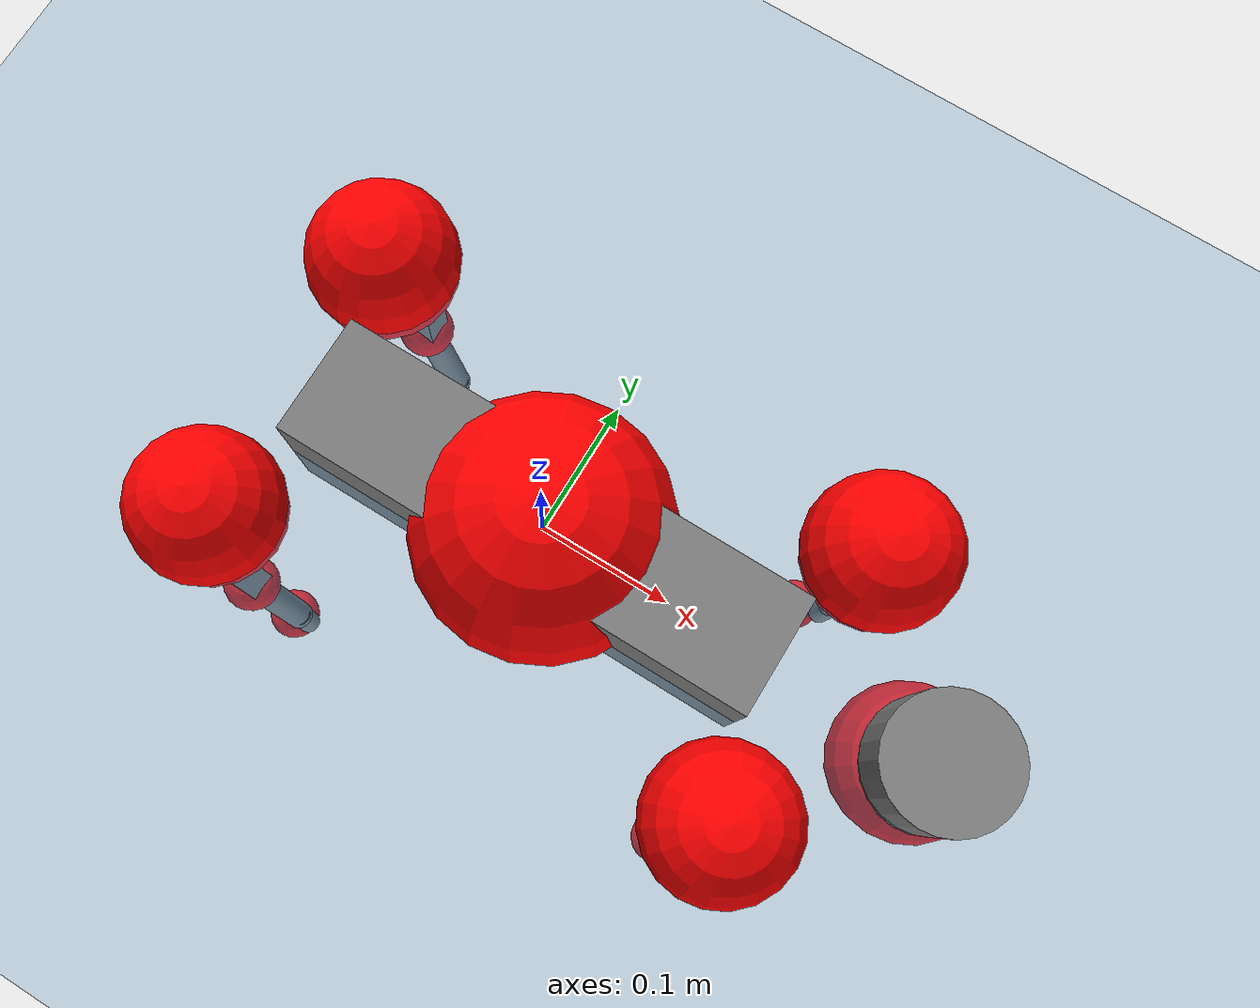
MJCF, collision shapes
<mujoco model="go2">
  <compiler angle="radian" assetdir="assets" balanceinertia="true" inertiafromgeom="false"/>

  <option timestep="0.005" density="1.2" viscosity="2e-05"/>

  <size nkey="1"/>

  <visual>
    <quality shadowsize="8192"/>
    <map shadowclip="0.5"/>
  </visual>

  <default>
    <default class="/">
      <geom contype="0" conaffinity="0" group="1" solref="-1000 -80"/>
      <site size="0.01 0.005 0.005" group="5"/>
      <general forcelimited="true" biastype="affine" gainprm="20" biasprm="0 -20 -0.5"/>
      <default class="go2">
        <joint armature="0.01" damping="0.01" frictionloss="0.2"/>
        <geom condim="1" margin="0.001"/>
        <default class="visual">
          <geom type="mesh" group="2"/>
        </default>
        <default class="collision">
          <geom group="3"/>
          <default class="foot">
            <geom size="0.022 0 0" condim="6" priority="1" friction="0.8 0.02 0.01" solimp="0.015 1 0.022"/>
          </default>
        </default>
        <default class="reward_collision_sphere">
          <geom group="5" rgba="1 0 0 1"/>
        </default>
      </default>
    </default>
  </default>

  <asset>
    <texture type="skybox" colorspace="auto" name="//unnamed_texture_0" builtin="gradient" rgb1="0.95 0.95 0.95" rgb2="0.95 0.95 0.95" width="100" height="600"/>
    <texture type="2d" colorspace="auto" name="texplane" builtin="checker" rgb1="0.345 0.575 0.748" rgb2="0.345 0.575 0.748" markrgb="1 1 1" width="512" height="512"/>
    <material name="MatPlane" class="/" texture="texplane" texuniform="true" texrepeat="2 2" specular="0.9"/>
    <material name="metal" class="/" rgba="0.9 0.95 0.95 1"/>
    <material name="black" class="/" rgba="0 0 0 1"/>
    <material name="white" class="/"/>
    <material name="gray" class="/" rgba="0.671705 0.692426 0.77427 1"/>
    <mesh name="base_0" class="/" file="base_0.obj"/>
    <mesh name="base_1" class="/" file="base_1.obj"/>
    <mesh name="base_2" class="/" file="base_2.obj"/>
    <mesh name="base_3" class="/" file="base_3.obj"/>
    <mesh name="base_4" class="/" file="base_4.obj"/>
    <mesh name="hip_0" class="/" file="hip_0.obj"/>
    <mesh name="hip_1" class="/" file="hip_1.obj"/>
    <mesh name="thigh_0" class="/" file="thigh_0.obj"/>
    <mesh name="thigh_1" class="/" file="thigh_1.obj"/>
    <mesh name="thigh_mirror_0" class="/" file="thigh_mirror_0.obj"/>
    <mesh name="thigh_mirror_1" class="/" file="thigh_mirror_1.obj"/>
    <mesh name="calf_0" class="/" file="calf_0.obj"/>
    <mesh name="calf_1" class="/" file="calf_1.obj"/>
    <mesh name="calf_mirror_0" class="/" file="calf_mirror_0.obj"/>
    <mesh name="calf_mirror_1" class="/" file="calf_mirror_1.obj"/>
    <mesh name="foot" class="/" file="foot.obj"/>
  </asset>

  <worldbody>
    <geom name="floor" class="/" size="100 100 0.125" type="plane" group="0" material="MatPlane"/>
    <light name="toplight_shadow" class="/" pos="0 0 5" dir="0.0990148 0.0990148 -0.990148" type="directional" ambient="0.04 0.04 0.04" diffuse="0.55 0.55 0.55" specular="0.12 0.12 0.12"/>
    <light name="toplight_fill" class="/" pos="0 0 5" dir="0.0990148 0.0990148 -0.990148" type="directional" castshadow="false" ambient="0.04 0.04 0.04" diffuse="0.3 0.3 0.3" specular="0.08 0.08 0.08"/>
    <body name="trunk" childclass="go2" pos="0.00115682 -0.000930032 -0.000145002" quat="1 -1.81732e-05 1.39845e-05 -3.11319e-05">
      <inertial pos="0.0226241 -0.000409679 -0.00460035" quat="0.00327633 0.714968 -0.00152561 0.699147" mass="5.98897" diaginertia="0.154181 0.0705172 0.0118397"/>
      <joint name="//unnamed_joint_0" type="free" armature="0" damping="0" frictionloss="0"/>
      <geom name="//unnamed_geom_1" class="visual" material="black" mesh="base_0"/>
      <geom name="//unnamed_geom_2" class="visual" material="black" mesh="base_1"/>
      <geom name="//unnamed_geom_3" class="visual" material="black" mesh="base_2"/>
      <geom name="//unnamed_geom_4" class="visual" material="white" mesh="base_3"/>
      <geom name="//unnamed_geom_5" class="visual" material="gray" mesh="base_4"/>
      <geom name="trunk_1" class="collision" size="0.180012 0.0447398 0.0545491" type="box"/>
      <geom name="trunk_2" class="collision" size="0.0478501 0.0430651" pos="0.305216 0 0.00864263" type="cylinder"/>
      <geom name="trunk_3" class="collision" size="0.0449791" pos="0.313783 0 -0.0518558"/>
      <geom name="//unnamed_geom_9" class="reward_collision_sphere" size="0.0957002"/>
      <geom name="//unnamed_geom_10" class="reward_collision_sphere" size="0.0574201" pos="0.299861 0 -0.0388918"/>
      <site name="imu" pos="-0.0290227 -0.00268722 0.0279291" size="0.00957002"/>
      <camera name="track" pos="0 -1.87162 0" quat="0.707107 0.707107 0 0" mode="trackcom"/>
      <camera name="ego_camera" pos="0.334131 0 0.0388918" quat="-0.5 -0.5 0.5 0.5"/>
      <body name="FL_hip" pos="0.207124 0.0446544 0.00111324" quat="1 -2.64831e-05 0.000134224 -0.000354279">
        <inertial pos="-0.00706748 0.00289004 9.33222e-05" quat="0.497308 0.498494 0.506181 0.497965" mass="0.595487" diaginertia="0.0012469 0.000429484 0.000230773"/>
        <joint name="FL_hip_joint" pos="0 0 0" axis="0.999905 0.00385444 0.0132154" range="-1.05251 1.04961" armature="0.00873472" damping="0.00731081" frictionloss="0.182178"/>
        <geom name="//unnamed_geom_11" class="visual" material="metal" mesh="hip_0"/>
        <geom name="//unnamed_geom_12" class="visual" material="gray" mesh="hip_1"/>
        <geom name="//unnamed_geom_13" class="collision" size="0.0440221 0.01914" pos="0 0.0748647 0" quat="0.707107 0.707107 0 0" type="cylinder"/>
        <geom name="//unnamed_geom_14" class="reward_collision_sphere" size="0.0574201" pos="0 0.0655066 0"/>
        <body name="FL_thigh" pos="-0.000176433 0.0901301 0.001265" quat="1 0.000413659 0.000328484 -1.95565e-05">
          <inertial pos="-0.00453043 -0.0208578 -0.029956" quat="0.831956 0.0825834 -0.0216915 0.548233" mass="1.01714" diaginertia="0.00842508 0.00422999 0.000429504"/>
          <joint name="FL_thigh_joint" pos="0 0 0" axis="-0.004508 0.999988 -0.00168313" range="-1.58988 3.49261" armature="0.00991562" damping="0.00749063" frictionloss="0.198553"/>
          <geom name="//unnamed_geom_15" class="visual" material="metal" mesh="thigh_0"/>
          <geom name="//unnamed_geom_16" class="visual" material="gray" mesh="thigh_1"/>
          <geom name="//unnamed_geom_17" class="collision" size="0.101921 0.0117233 0.016269" pos="0 0 -0.092044" quat="0.707107 0 0.707107 0" type="box"/>
          <body name="FL_calf" pos="-0.000401466 -0.00232717 -0.184305" quat="1 -5.98489e-06 3.49451e-05 -4.20031e-05">
            <inertial pos="0.00597162 -0.000757248 -0.12182" quat="0.707778 0.00113918 -0.0108496 0.70635" mass="0.208184" diaginertia="0.00207679 0.00104479 2.51728e-05"/>
            <joint name="FL_calf_joint" pos="0 0 0" axis="-0.0060264 0.999947 0.00830741" stiffness="0.00274179" range="-2.72256 -0.846485" armature="0.00967591" damping="0.00444433" frictionloss="0.195267"/>
            <geom name="//unnamed_geom_18" class="visual" material="gray" mesh="calf_0"/>
            <geom name="//unnamed_geom_19" class="visual" material="black" mesh="calf_1"/>
            <geom name="FL_calf0" class="collision" size="0.011484 0.0574201" pos="0.00856747 0 -0.0518558" quat="0.994493 0 -0.104807 0" type="cylinder"/>
            <geom name="//unnamed_geom_21" class="collision" size="0.010527 0.0311026" pos="0.0214187 0 -0.127911" quat="0.999688 0 0.0249974 0" type="cylinder"/>
            <geom name="//unnamed_geom_22" class="visual" pos="0 0 -0.184088" quat="1 0 0 0" material="black" mesh="foot"/>
            <geom name="FL_foot" class="foot" size="0.0178752" pos="-0.00214187 0 -0.184088"/>
            <geom name="//unnamed_geom_24" class="reward_collision_sphere" size="0.023925"/>
            <geom name="//unnamed_geom_25" class="reward_collision_sphere" size="0.023925" pos="-0.00214187 0 -0.184088"/>
            <site name="FL_foot" class="foot" pos="-0.00214187 0 -0.184088" size="0.00957002"/>
          </body>
        </body>
      </body>
      <body name="FR_hip" pos="0.206097 -0.0411019 -0.000978487" quat="1 -0.000113112 3.21107e-05 0.000124628">
        <inertial pos="-0.00370223 -0.0021758 -0.0022219" quat="0.498548 0.507013 0.496779 0.497592" mass="0.610417" diaginertia="0.00127125 0.000438556 0.00023642"/>
        <joint name="FR_hip_joint" pos="0 0 0" axis="0.999995 -0.000807204 -0.00306683" stiffness="0.0060551" range="-1.07916 1.05814" armature="0.00968375" damping="0.0133914" frictionloss="0.184515"/>
        <geom name="//unnamed_geom_26" class="visual" pos="0 6.23273e-10 2.67335e-08" quat="4.63268e-05 1 0 0" material="metal" mesh="hip_0"/>
        <geom name="//unnamed_geom_27" class="visual" pos="0 1.0104e-09 -6.61221e-08" quat="4.63268e-05 1 0 0" material="gray" mesh="hip_1"/>
        <geom name="//unnamed_geom_28" class="collision" size="0.0440221 0.01914" pos="0 -0.0748647 0" quat="0.707107 0.707107 0 0" type="cylinder"/>
        <geom name="//unnamed_geom_29" class="reward_collision_sphere" size="0.0574201" pos="0 -0.0655066 0"/>
        <body name="FR_thigh" pos="0.000101252 -0.0898194 -0.000213446" quat="1 -6.81121e-05 -4.22259e-05 4.97702e-05">
          <inertial pos="-0.00269418 0.0231328 -0.0285874" quat="0.551399 -0.0205907 0.0842958 0.829717" mass="1.00125" diaginertia="0.00831517 0.00418062 0.000420455"/>
          <joint name="FR_thigh_joint" pos="0 0 0" axis="0.00193569 -0.999996 -0.00207257" range="-3.50247 1.54978" armature="0.00976459" damping="0.011656" frictionloss="0.194306"/>
          <geom name="//unnamed_geom_30" class="visual" material="metal" mesh="thigh_mirror_0"/>
          <geom name="//unnamed_geom_31" class="visual" material="gray" mesh="thigh_mirror_1"/>
          <geom name="//unnamed_geom_32" class="collision" size="0.101921 0.0117233 0.016269" pos="0 0 -0.092044" quat="0.707107 0 0.707107 0" type="box"/>
          <body name="FR_calf" pos="-0.000254409 -0.000926675 -0.183191" quat="1 0.000302529 -0.00073823 0.000441996">
            <inertial pos="0.00891625 0.00116281 -0.121861" quat="0.703208 -0.00535498 -0.000139927 0.710964" mass="0.208204" diaginertia="0.00206126 0.00105545 2.60498e-05"/>
            <joint name="FR_calf_joint" pos="0 0 0" axis="-0.00070118 -0.999999 -0.000939182" range="0.802724 2.72171" armature="0.00983996" damping="0.0156426" frictionloss="0.201496"/>
            <geom name="//unnamed_geom_33" class="visual" material="gray" mesh="calf_mirror_0"/>
            <geom name="//unnamed_geom_34" class="visual" material="black" mesh="calf_mirror_1"/>
            <geom name="FR_calf0" class="collision" size="0.012441 0.0574201" pos="0.0107093 0 -0.0518558" quat="0.995004 0 -0.0998334 0" type="cylinder"/>
            <geom name="//unnamed_geom_36" class="collision" size="0.010527 0.0311026" pos="0.0214187 0 -0.127911" quat="0.999688 0 0.0249974 0" type="cylinder"/>
            <geom name="//unnamed_geom_37" class="visual" pos="0 0 -0.184088" quat="1 0 0 0" material="black" mesh="foot"/>
            <geom name="FR_foot" class="foot" size="0.0218435" pos="-0.00214187 0 -0.184088"/>
            <geom name="//unnamed_geom_39" class="reward_collision_sphere" size="0.023925"/>
            <geom name="//unnamed_geom_40" class="reward_collision_sphere" size="0.023925" pos="-0.00214187 0 -0.184088"/>
            <site name="FR_foot" class="foot" pos="-0.00214187 0 -0.184088" size="0.00957002"/>
          </body>
        </body>
      </body>
      <body name="RL_hip" pos="-0.205124 0.0432495 0.000810034" quat="1 2.97387e-05 -5.25956e-06 6.16737e-05">
        <inertial pos="0.00732598 0.00015524 9.46047e-05" quat="0.506965 0.495577 0.49494 0.502419" mass="0.599863" diaginertia="0.00124611 0.000425731 0.00022828"/>
        <joint name="RL_hip_joint" pos="0 0 0" axis="-0.999835 -0.0163619 0.00787542" range="-1.05207 1.02882" armature="0.00955145" damping="0.00827616" frictionloss="0.198749"/>
        <geom name="//unnamed_geom_41" class="visual" pos="-1.80042e-09 0 -3.52925e-07" quat="4.63268e-05 0 1 0" material="metal" mesh="hip_0"/>
        <geom name="//unnamed_geom_42" class="visual" pos="-2.9187e-09 0 -3.12994e-07" quat="4.63268e-05 0 1 0" material="gray" mesh="hip_1"/>
        <geom name="//unnamed_geom_43" class="collision" size="0.0440221 0.01914" pos="0 0.0748647 0" quat="0.707107 0.707107 0 0" type="cylinder"/>
        <geom name="//unnamed_geom_44" class="reward_collision_sphere" size="0.0574201" pos="0 0.0655066 0"/>
        <body name="RL_thigh" pos="-0.000755091 0.0880858 0.000809955" quat="1 0.000299661 -0.000108116 -0.000301934">
          <inertial pos="-0.00376817 -0.018938 -0.0283806" quat="0.82908 0.0842281 -0.0189988 0.552423" mass="1.01136" diaginertia="0.00840823 0.00419119 0.000413105"/>
          <joint name="RL_thigh_joint" pos="0 0 0" axis="0.0049531 0.999987 -0.00145465" range="-0.528308 4.52341" armature="0.010279" damping="0.00538643" frictionloss="0.19902"/>
          <geom name="//unnamed_geom_45" class="visual" material="metal" mesh="thigh_0"/>
          <geom name="//unnamed_geom_46" class="visual" material="gray" mesh="thigh_1"/>
          <geom name="//unnamed_geom_47" class="collision" size="0.101921 0.0117233 0.016269" pos="0 0 -0.092044" quat="0.707107 0 0.707107 0" type="box"/>
          <body name="RL_calf" pos="0.000311198 0.000261336 -0.185934" quat="1 0.000145281 0.00041408 0.0007944">
            <inertial pos="0.00710498 -0.000455518 -0.119964" quat="0.713275 0.00321382 -0.00580385 0.700853" mass="0.208535" diaginertia="0.00211279 0.00106614 2.55811e-05"/>
            <joint name="RL_calf_joint" pos="0 0 0" axis="3.68964e-05 1 -0.000381842" stiffness="0.00363898" range="-2.72014 -0.829408" armature="0.00959336" damping="0.00398212" frictionloss="0.188124"/>
            <geom name="//unnamed_geom_48" class="visual" material="gray" mesh="calf_0"/>
            <geom name="//unnamed_geom_49" class="visual" material="black" mesh="calf_1"/>
            <geom name="RL_calf0" class="collision" size="0.012441 0.0574201" pos="0.0107093 0 -0.0518558" quat="0.995004 0 -0.0998334 0" type="cylinder"/>
            <geom name="//unnamed_geom_51" class="collision" size="0.010527 0.0311026" pos="0.0214187 0 -0.127911" quat="0.999688 0 0.0249974 0" type="cylinder"/>
            <geom name="//unnamed_geom_52" class="visual" pos="0 0 -0.184088" quat="1 0 0 0" material="black" mesh="foot"/>
            <geom name="RL_foot" class="foot" size="0.0180018" pos="-0.00214187 0 -0.184088"/>
            <geom name="//unnamed_geom_54" class="reward_collision_sphere" size="0.023925"/>
            <geom name="//unnamed_geom_55" class="reward_collision_sphere" size="0.023925" pos="-0.00214187 0 -0.184088"/>
            <site name="RL_foot" class="foot" pos="-0.00214187 0 -0.184088" size="0.00957002"/>
          </body>
        </body>
      </body>
      <body name="RR_hip" pos="-0.208866 -0.0445429 -0.000824985" quat="1 -0.000246759 7.46141e-05 0.000291512">
        <inertial pos="0.00552285 -0.00261854 -4.9165e-05" quat="0.501031 0.501963 0.498014 0.498983" mass="0.591827" diaginertia="0.00122788 0.000423619 0.000228784"/>
        <joint name="RR_hip_joint" pos="0 0 0" axis="-0.99995 0.00676144 0.00738595" stiffness="0.00297361" range="-1.04673 1.03566" armature="0.00984771" damping="0.000113641" frictionloss="0.189178"/>
        <geom name="//unnamed_geom_56" class="visual" pos="1.79575e-09 6.23273e-10 -3.79658e-07" quat="2.14617e-09 4.63268e-05 4.63268e-05 -1" material="metal" mesh="hip_0"/>
        <geom name="//unnamed_geom_57" class="visual" pos="2.93027e-09 1.0104e-09 -2.46872e-07" quat="2.14617e-09 4.63268e-05 4.63268e-05 -1" material="gray" mesh="hip_1"/>
        <geom name="//unnamed_geom_58" class="collision" size="0.0440221 0.01914" pos="0 -0.0748647 0" quat="0.707107 0.707107 0 0" type="cylinder"/>
        <geom name="//unnamed_geom_59" class="reward_collision_sphere" size="0.0574201" pos="0 -0.0655066 0"/>
        <body name="RR_thigh" pos="0.000338738 -0.0891396 -2.43294e-05" quat="1 -0.000225053 -8.97296e-05 0.000168877">
          <inertial pos="-0.0037897 0.0208442 -0.0287878" quat="0.557466 -0.0128222 0.083268 0.825914" mass="1.01029" diaginertia="0.00840151 0.00422557 0.000434359"/>
          <joint name="RR_thigh_joint" pos="0 0 0" axis="-0.000204329 -1 0.000366547" range="-4.53303 0.508475" armature="0.00989538" damping="0.0121356" frictionloss="0.200514"/>
          <geom name="//unnamed_geom_60" class="visual" material="metal" mesh="thigh_mirror_0"/>
          <geom name="//unnamed_geom_61" class="visual" material="gray" mesh="thigh_mirror_1"/>
          <geom name="//unnamed_geom_62" class="collision" size="0.101921 0.0117233 0.016269" pos="0 0 -0.092044" quat="0.707107 0 0.707107 0" type="box"/>
          <body name="RR_calf" pos="0.000766931 -0.00143706 -0.184971" quat="1 -2.22401e-05 -3.76143e-05 9.21387e-05">
            <inertial pos="0.00548898 -0.00122213 -0.120792" quat="0.70352 -0.00449236 0.00156804 0.71066" mass="0.21253" diaginertia="0.00209674 0.00105715 2.54658e-05"/>
            <joint name="RR_calf_joint" pos="0 0 0" axis="0.00557643 -0.999982 -0.00221504" range="0.854057 2.75792" armature="0.00958441" damping="0.0106107" frictionloss="0.207217"/>
            <geom name="//unnamed_geom_63" class="visual" material="gray" mesh="calf_mirror_0"/>
            <geom name="//unnamed_geom_64" class="visual" material="black" mesh="calf_mirror_1"/>
            <geom name="RR_calf0" class="collision" size="0.012441 0.0574201" pos="0.0107093 0 -0.0518558" quat="0.995004 0 -0.0998334 0" type="cylinder"/>
            <geom name="//unnamed_geom_66" class="collision" size="0.010527 0.0311026" pos="0.0214187 0 -0.127911" quat="0.999688 0 0.0249974 0" type="cylinder"/>
            <geom name="//unnamed_geom_67" class="visual" pos="0 0 -0.184088" quat="1 0 0 0" material="black" mesh="foot"/>
            <geom name="RR_foot" class="foot" size="0.0225441" pos="-0.00214187 0 -0.184088"/>
            <geom name="//unnamed_geom_69" class="reward_collision_sphere" size="0.023925"/>
            <geom name="//unnamed_geom_70" class="reward_collision_sphere" size="0.023925" pos="-0.00214187 0 -0.184088"/>
            <site name="RR_foot" class="foot" pos="-0.00214187 0 -0.184088" size="0.00957002"/>
          </body>
        </body>
      </body>
    </body>
  </worldbody>

  <contact>
    <pair class="/" geom1="floor" geom2="FL_foot" name="//unnamed_contact_0"/>
    <pair class="/" geom1="floor" geom2="FR_foot" name="//unnamed_contact_1"/>
    <pair class="/" geom1="floor" geom2="RL_foot" name="//unnamed_contact_2"/>
    <pair class="/" geom1="floor" geom2="RR_foot" name="//unnamed_contact_3"/>
  </contact>

  <actuator>
    <general name="FL_hip" class="/" joint="FL_hip_joint" forcerange="-22.6347 22.6347" gainprm="19.2253" biasprm="0 -19.2253 -0.474962"/>
    <general name="FL_thigh" class="/" joint="FL_thigh_joint" forcerange="-22.0507 22.0507" gainprm="19.2253" biasprm="0 -19.2253 -0.474962"/>
    <general name="FL_calf" class="/" joint="FL_calf_joint" forcerange="-41.7861 41.7861" gainprm="19.2253" biasprm="0 -19.2253 -0.474962"/>
    <general name="FR_hip" class="/" joint="FR_hip_joint" forcerange="-22.6481 22.6481" gainprm="19.2253" biasprm="0 -19.2253 -0.474962"/>
    <general name="FR_thigh" class="/" joint="FR_thigh_joint" forcerange="-23.0453 23.0453" gainprm="19.2253" biasprm="0 -19.2253 -0.474962"/>
    <general name="FR_calf" class="/" joint="FR_calf_joint" forcerange="-42.9557 42.9557" gainprm="19.2253" biasprm="0 -19.2253 -0.474962"/>
    <general name="RL_hip" class="/" joint="RL_hip_joint" forcerange="-22.5998 22.5998" gainprm="19.2253" biasprm="0 -19.2253 -0.474962"/>
    <general name="RL_thigh" class="/" joint="RL_thigh_joint" forcerange="-22.3488 22.3488" gainprm="19.2253" biasprm="0 -19.2253 -0.474962"/>
    <general name="RL_calf" class="/" joint="RL_calf_joint" forcerange="-45.0231 45.0231" gainprm="19.2253" biasprm="0 -19.2253 -0.474962"/>
    <general name="RR_hip" class="/" joint="RR_hip_joint" forcerange="-22.7204 22.7204" gainprm="19.2253" biasprm="0 -19.2253 -0.474962"/>
    <general name="RR_thigh" class="/" joint="RR_thigh_joint" forcerange="-22.2155 22.2155" gainprm="19.2253" biasprm="0 -19.2253 -0.474962"/>
    <general name="RR_calf" class="/" joint="RR_calf_joint" forcerange="-40.3283 40.3283" gainprm="19.2253" biasprm="0 -19.2253 -0.474962"/>
  </actuator>

  <sensor>
    <gyro site="imu" name="imu_angular_velocity"/>
    <velocimeter site="imu" name="imu_linear_velocity"/>
    <framelinvel objtype="site" objname="FL_foot" name="FL_foot_global_linear_velocity"/>
    <framelinvel objtype="site" objname="FR_foot" name="FR_foot_global_linear_velocity"/>
    <framelinvel objtype="site" objname="RL_foot" name="RL_foot_global_linear_velocity"/>
    <framelinvel objtype="site" objname="RR_foot" name="RR_foot_global_linear_velocity"/>
  </sensor>

  <keyframe>
    <key name="home" qpos="0 0 0.325 1 0 0 0 0.1 0.8 -1.5 -0.1 -0.8 1.5 -0.1 0.8 -1.5 0.1 -0.8 1.5"/>
  </keyframe>
</mujoco>
